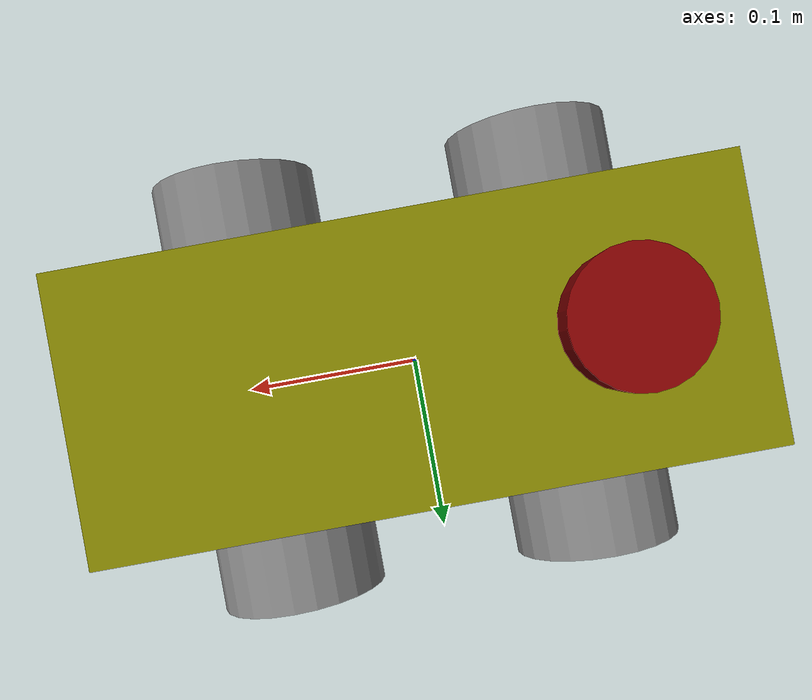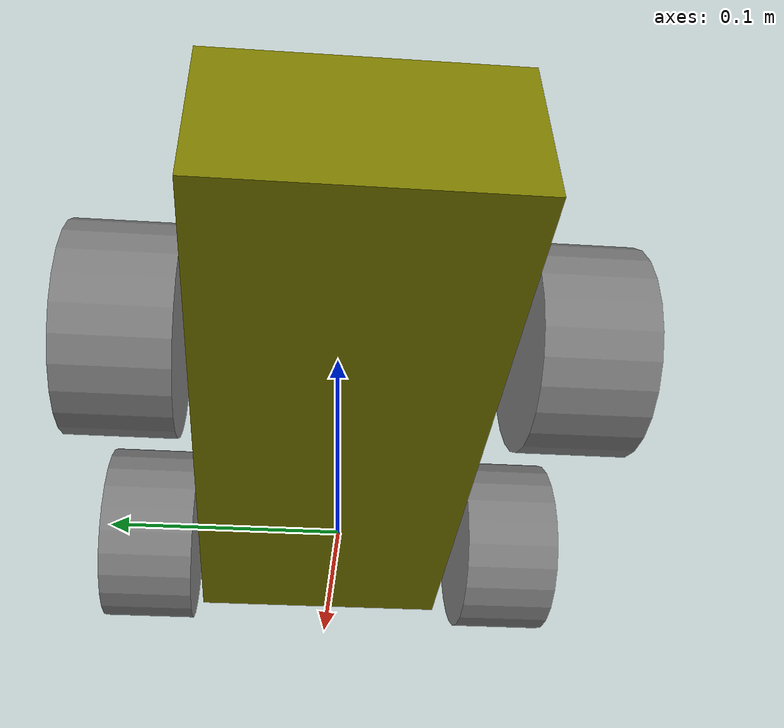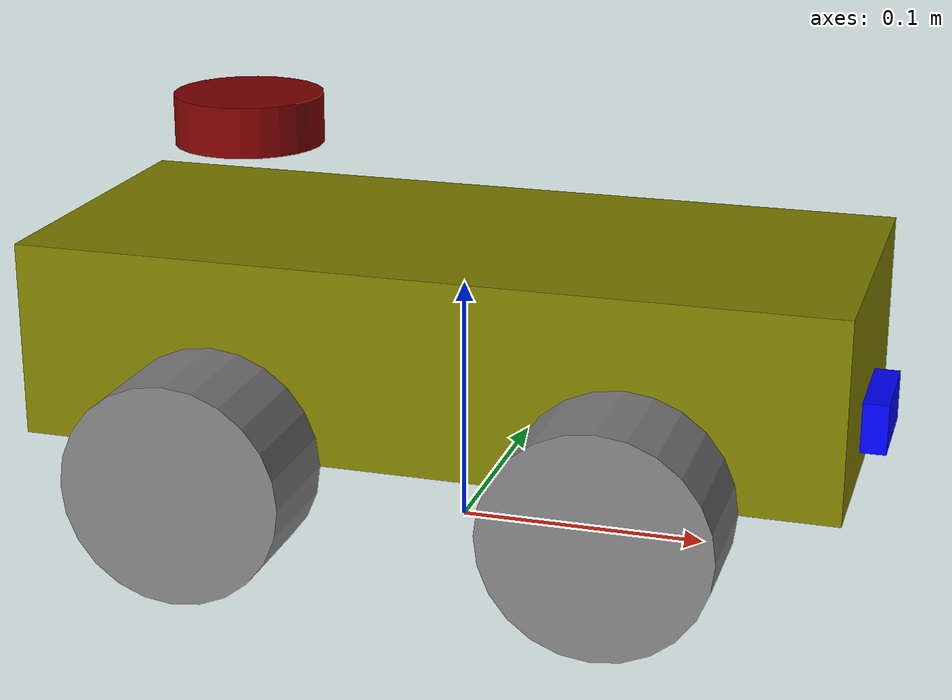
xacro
<?xml version="1.0"?>
<robot xmlns:xacro="http://ros.org/wiki/xacro" name="rover">

    <xacro:include filename="Properties.xacro"/>

    <xacro:include filename="rover_base.xacro"/>

    <xacro:include filename="mobile_base.ros2_control.xacro"/>

    <xacro:include filename="gazebo_control.xacro"/>

</robot>

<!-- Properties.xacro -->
<robot xmlns:xacro="http://ros.org/wiki/xacro" name="rover_materials">

    <material name="yellow">
        <color rgba="0.5 0.5 0.0 1.0"/>
    </material>

    <material name="grey">
        <color rgba="0.5 0.5 0.5 1.0"/>
    </material>

    <material name="blue">
        <color rgba="0.0 0.0 0.5 1.0"/>
    </material>

    <material name="red">
        <color rgba="0.5 0.0 0.0 1.0"/>
    </material>

</robot>

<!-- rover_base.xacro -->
<robot xmlns:xacro="http://www.ros.org/wiki/xacro">

    <xacro:property name="base_length" value="0.323" />
    <xacro:property name="base_width" value="0.137" />
    <xacro:property name="base_height" value="0.078" />
    <xacro:property name="wheel_radius" value="0.0435" />
    <xacro:property name="wheel_length" value="0.045" />

    <xacro:property name="wheel_effort_limit" value="10.0" />
    <xacro:property name="wheel_velocity_limit" value="10.0" />

    <link name="base_footprint" />

    <!-- BASE LINK (Chassis) -->
    <link name="base_link">
        <visual>
            <geometry>
                <box size="${base_length} ${base_width} ${base_height}" />
            </geometry>
            <origin xyz="0 0 ${base_height / 2.0}" rpy="0 0 0" />
            <material name="yellow" />
        </visual>
        <collision>
            <geometry>
                <box size="${base_length} ${base_width} ${base_height}" />
            </geometry>
            <origin xyz="0 0 ${base_height / 2.0}" rpy="0 0 0" />
        </collision>
        <inertial>
            <mass value="5.0" />
            <inertia ixx="0.1" ixy="0.0" ixz="0.0"
                    iyy="0.1" iyz="0.0"
                    izz="0.1" />
        </inertial>
    </link>

    <xacro:macro name="wheel_link" params="prefix">
        <link name="${prefix}_wheel_link">
            <visual>
                <geometry>
                    <cylinder radius="${wheel_radius}" length="${wheel_length}" />
                </geometry>
                <!-- Rotate cylinder by pi/2 (90 degrees) around X to align with Y-axis -->
                <origin xyz="0 0 0" rpy="${pi / 2.0} 0 0" />
                <material name="grey" />
            </visual>
            <collision>
                <geometry>
                    <cylinder radius="${wheel_radius}" length="${wheel_length}" />
                </geometry>
                <origin xyz="0 0 0" rpy="${pi / 2.0} 0 0" />
            </collision>
            <inertial>
                <mass value="1.0" />
                <inertia ixx="0.01" ixy="0.0" ixz="0.0"
                        iyy="0.01" iyz="0.0"
                        izz="0.01" />
            </inertial>
        </link>
    </xacro:macro>

    <xacro:macro name="lidar_link" params="prefix">
        <link name="${prefix}_link">
            <visual>
                <geometry>
                    <cylinder radius="0.03" length="0.02" />
                </geometry>
                <origin xyz="0 0 0" rpy="0 0 0" />
                <material name="red" />
            </visual>
            <collision>
                <geometry>
                    <cylinder radius="0.03" length="0.02" />
                </geometry>
                <origin xyz="0 0 0" rpy="0 0 0" />
            </collision>
            <inertial>
                <mass value="0.1" />
                <inertia ixx="0.001" ixy="0.0" ixz="0.0"
                        iyy="0.001" iyz="0.0"
                        izz="0.001" />
            </inertial>
        </link>
    </xacro:macro>

    <xacro:wheel_link prefix="rear_right" />
    <xacro:wheel_link prefix="rear_left" />
    <xacro:wheel_link prefix="front_right" />
    <xacro:wheel_link prefix="front_left" />

    <xacro:lidar_link prefix="lidar" />

    <joint name="base_joint" type="fixed">
        <parent link="base_footprint" />
        <child link="base_link" />
        <origin xyz="0 0 ${wheel_radius}" rpy="0 0 0"/>
    </joint>

    <joint name="base_rear_right_wheel_joint" type="continuous">
        <parent link="base_link" />
        <child link="rear_right_wheel_link" />
        <origin xyz="${-base_length / 4.0} ${-(base_width + wheel_length) / 2.0} 0" rpy="0 0 0" />
        <axis xyz="0 1 0" />
    </joint>

    <joint name="base_rear_left_wheel_joint" type="continuous">
        <parent link="base_link" />
        <child link="rear_left_wheel_link" />
        <origin xyz="${-base_length / 4.0} ${(base_width + wheel_length) / 2.0} 0" rpy="0 0 0" />
        <axis xyz="0 1 0" />
    </joint>

    <joint name="base_front_right_wheel_joint" type="continuous">
        <parent link="base_link" />
        <child link="front_right_wheel_link" />
        <origin xyz="${base_length / 4.0} ${-(base_width + wheel_length) / 2.0} 0" rpy="0 0 0" />
        <axis xyz="0 1 0" />
    </joint>

    <joint name="base_front_left_wheel_joint" type="continuous">
        <parent link="base_link" />
        <child link="front_left_wheel_link" />
        <origin xyz="${base_length / 4.0} ${(base_width + wheel_length) / 2.0} 0" rpy="0 0 0" />
        <axis xyz="0 1 0" />
    </joint>

    <joint name="lidar_joint" type="fixed">
        <parent link="base_link" />
        <child link="lidar_link" />
        <origin xyz="-0.09 0 ${base_height + 0.04}" rpy="0 0 0"/>
    </joint>

    <link name="camera_link">
        <visual>
            <geometry>
                <box size="0.02 0.04 0.02" />
            </geometry>
            <material name="blue">
                <color rgba="0 0 1 1"/>
            </material>
        </visual>
        <collision>
            <geometry>
                <box size="0.02 0.04 0.02" />
            </geometry>
        </collision>
        <inertial>
            <mass value="0.05" />
            <inertia ixx="0.0001" ixy="0.0" ixz="0.0"
                     iyy="0.0001" iyz="0.0"
                     izz="0.0001" />
        </inertial>
    </link>

    <joint name="camera_joint" type="fixed">
        <parent link="base_link" />
        <child link="camera_link" />
        <origin xyz="${base_length / 2.0} 0 0.02" rpy="0 0 0"/>
    </joint>

</robot>
